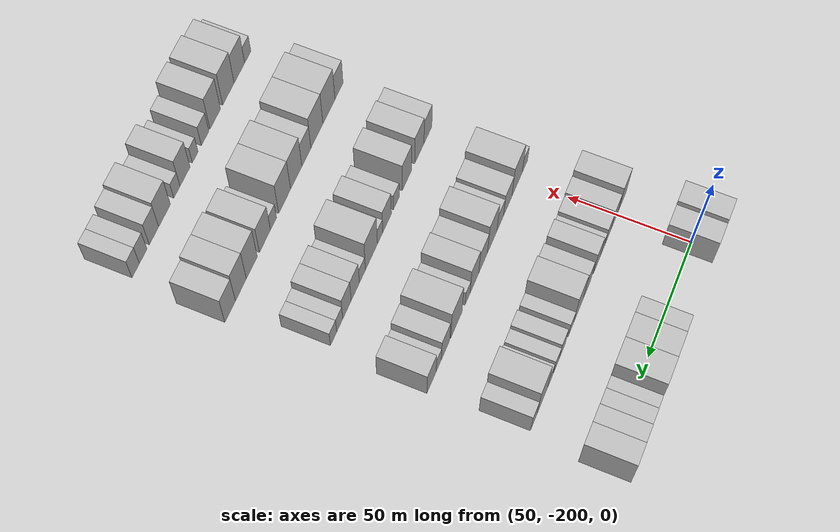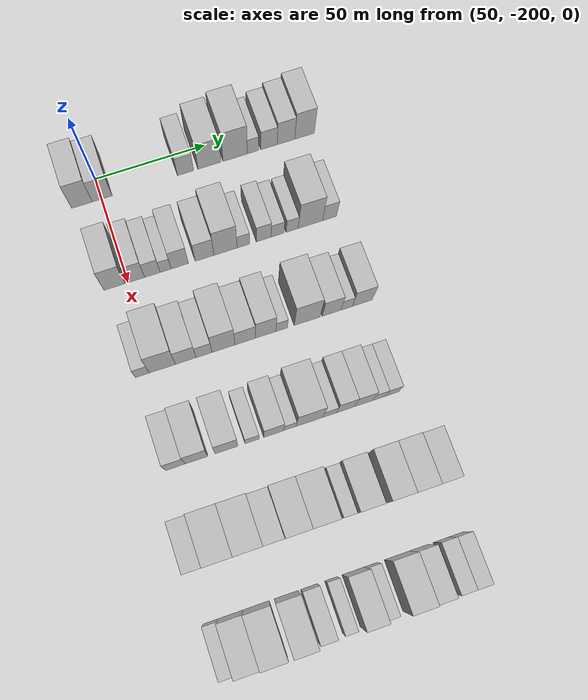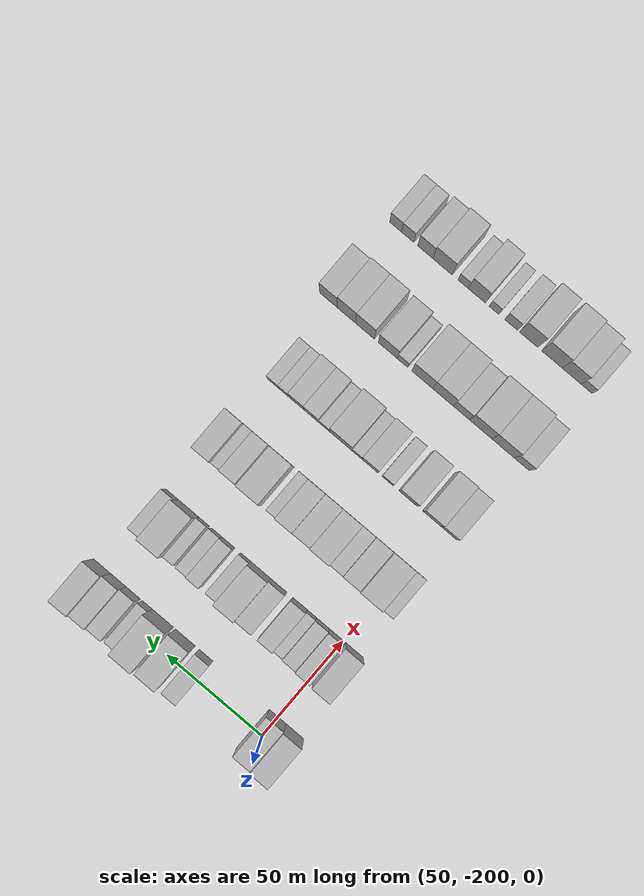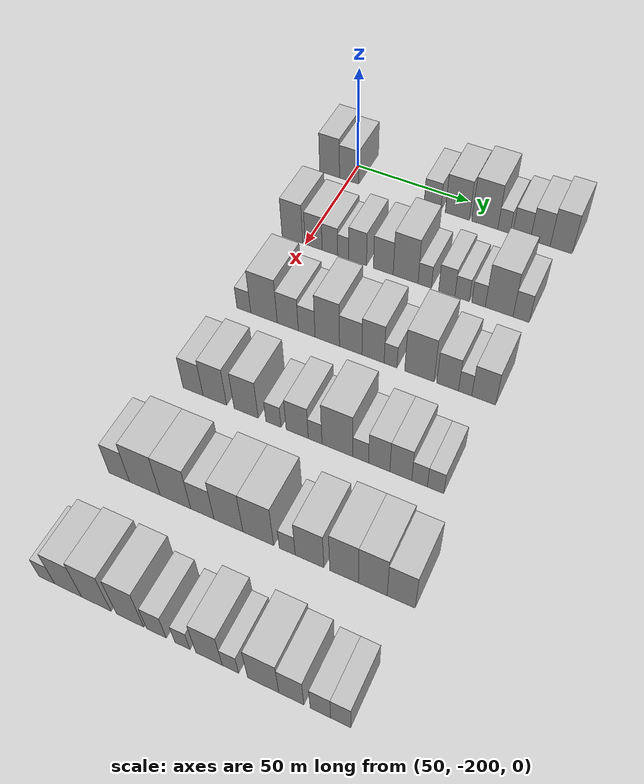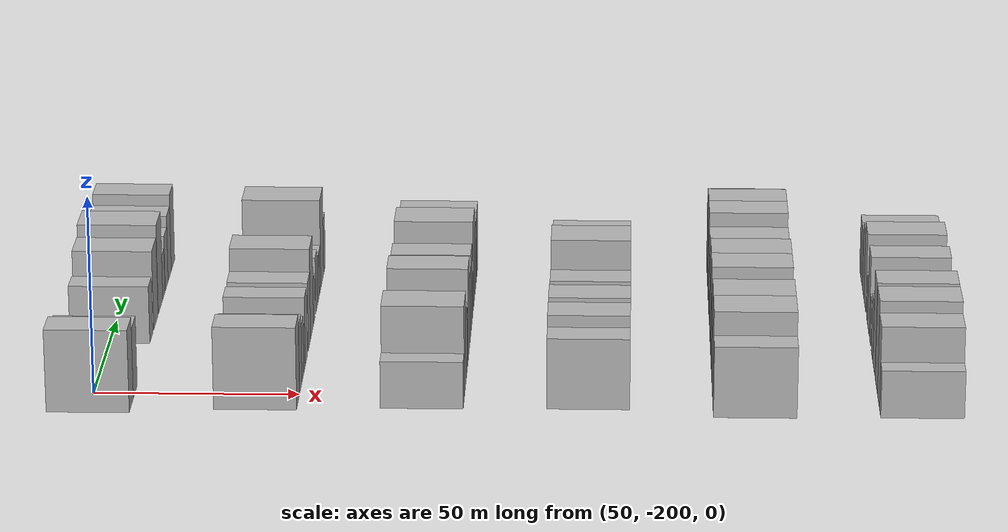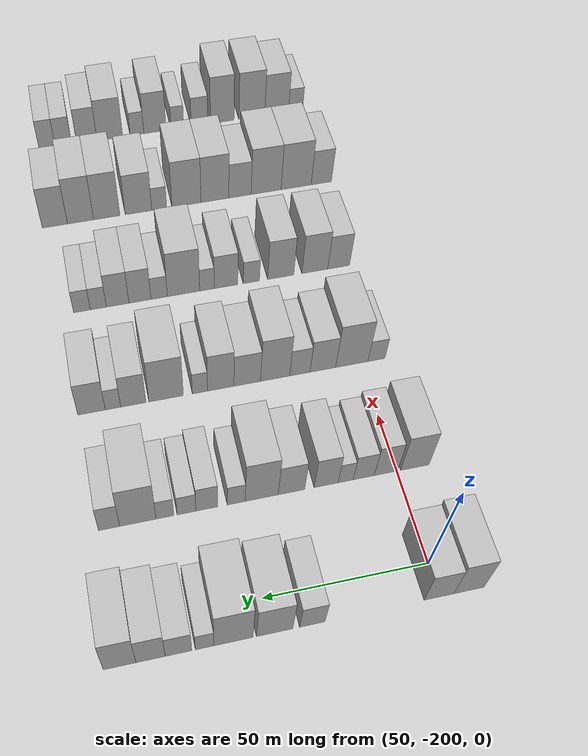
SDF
<sdf version="1.6">
 <world name="default">
  <model name="building_49">
   <static>1</static>
   <pose>50.0000 -208.6979 0 0.000000 0.000000 0.000000</pose>
   <link name="link">
    <pose>0 0 10.50 0 0 0</pose>
    <collision name="collision"><geometry><box><size>20.0000 9.2296 21.0000</size></box></geometry></collision>
    <visual name="visual">
     <cast_shadows>0</cast_shadows>
     <geometry><box><size>20.0000 9.2296 21.0000</size></box></geometry>
     <material>
      <script>
       <uri>model://HANNAS_wall/materials/scripts</uri>
       <uri>model://HANNAS_wall/materials/textures</uri>
       <name>vrc/HANNAS_wall</name>
      </script>
     </material>
    </visual>
   </link>
  </model>
  <model name="building_50">
   <static>1</static>
   <pose>50.0000 -199.6259 0 0.000000 0.000000 0.000000</pose>
   <link name="link">
    <pose>0 0 9.00 0 0 0</pose>
    <collision name="collision"><geometry><box><size>20.0000 8.9143 18.0000</size></box></geometry></collision>
    <visual name="visual">
     <cast_shadows>0</cast_shadows>
     <geometry><box><size>20.0000 8.9143 18.0000</size></box></geometry>
     <material>
      <script>
       <uri>model://HANNAS_wall/materials/scripts</uri>
       <uri>model://HANNAS_wall/materials/textures</uri>
       <name>vrc/HANNAS_wall</name>
      </script>
     </material>
    </visual>
   </link>
  </model>
  <model name="building_51">
   <static>1</static>
   <pose>50.0000 -162.0807 0 0.000000 0.000000 0.000000</pose>
   <link name="link">
    <pose>0 0 7.50 0 0 0</pose>
    <collision name="collision"><geometry><box><size>20.0000 7.3920 15.0000</size></box></geometry></collision>
    <visual name="visual">
     <cast_shadows>0</cast_shadows>
     <geometry><box><size>20.0000 7.3920 15.0000</size></box></geometry>
     <material>
      <script>
       <uri>model://HANNAS_wall/materials/scripts</uri>
       <uri>model://HANNAS_wall/materials/textures</uri>
       <name>vrc/HANNAS_wall</name>
      </script>
     </material>
    </visual>
   </link>
  </model>
  <model name="building_52">
   <static>1</static>
   <pose>50.0000 -151.1443 0 0.000000 0.000000 0.000000</pose>
   <link name="link">
    <pose>0 0 10.50 0 0 0</pose>
    <collision name="collision"><geometry><box><size>20.0000 10.4809 21.0000</size></box></geometry></collision>
    <visual name="visual">
     <cast_shadows>0</cast_shadows>
     <geometry><box><size>20.0000 10.4809 21.0000</size></box></geometry>
     <material>
      <script>
       <uri>model://HANNAS_wall/materials/scripts</uri>
       <uri>model://HANNAS_wall/materials/textures</uri>
       <name>vrc/HANNAS_wall</name>
      </script>
     </material>
    </visual>
   </link>
  </model>
  <model name="building_53">
   <static>1</static>
   <pose>50.0000 -139.3174 0 0.000000 0.000000 0.000000</pose>
   <link name="link">
    <pose>0 0 12.00 0 0 0</pose>
    <collision name="collision"><geometry><box><size>20.0000 11.1729 24.0000</size></box></geometry></collision>
    <visual name="visual">
     <cast_shadows>0</cast_shadows>
     <geometry><box><size>20.0000 11.1729 24.0000</size></box></geometry>
     <material>
      <script>
       <uri>model://HANNAS_wall/materials/scripts</uri>
       <uri>model://HANNAS_wall/materials/textures</uri>
       <name>vrc/HANNAS_wall</name>
      </script>
     </material>
    </visual>
   </link>
  </model>
  <model name="building_54">
   <static>1</static>
   <pose>50.0000 -131.1116 0 0.000000 0.000000 0.000000</pose>
   <link name="link">
    <pose>0 0 6.00 0 0 0</pose>
    <collision name="collision"><geometry><box><size>20.0000 5.2386 12.0000</size></box></geometry></collision>
    <visual name="visual">
     <cast_shadows>0</cast_shadows>
     <geometry><box><size>20.0000 5.2386 12.0000</size></box></geometry>
     <material>
      <script>
       <uri>model://HANNAS_wall/materials/scripts</uri>
       <uri>model://HANNAS_wall/materials/textures</uri>
       <name>vrc/HANNAS_wall</name>
      </script>
     </material>
    </visual>
   </link>
  </model>
  <model name="building_55">
   <static>1</static>
   <pose>50.0000 -123.7501 0 0.000000 0.000000 0.000000</pose>
   <link name="link">
    <pose>0 0 7.50 0 0 0</pose>
    <collision name="collision"><geometry><box><size>20.0000 7.4845 15.0000</size></box></geometry></collision>
    <visual name="visual">
     <cast_shadows>0</cast_shadows>
     <geometry><box><size>20.0000 7.4845 15.0000</size></box></geometry>
     <material>
      <script>
       <uri>model://HANNAS_wall/materials/scripts</uri>
       <uri>model://HANNAS_wall/materials/textures</uri>
       <name>vrc/HANNAS_wall</name>
      </script>
     </material>
    </visual>
   </link>
  </model>
  <model name="building_56">
   <static>1</static>
   <pose>50.0000 -115.9099 0 0.000000 0.000000 0.000000</pose>
   <link name="link">
    <pose>0 0 9.00 0 0 0</pose>
    <collision name="collision"><geometry><box><size>20.0000 8.1960 18.0000</size></box></geometry></collision>
    <visual name="visual">
     <cast_shadows>0</cast_shadows>
     <geometry><box><size>20.0000 8.1960 18.0000</size></box></geometry>
     <material>
      <script>
       <uri>model://HANNAS_wall/materials/scripts</uri>
       <uri>model://HANNAS_wall/materials/textures</uri>
       <name>vrc/HANNAS_wall</name>
      </script>
     </material>
    </visual>
   </link>
  </model>
  <model name="building_57">
   <static>1</static>
   <pose>50.0000 -107.2792 0 0.000000 0.000000 0.000000</pose>
   <link name="link">
    <pose>0 0 10.50 0 0 0</pose>
    <collision name="collision"><geometry><box><size>20.0000 9.0653 21.0000</size></box></geometry></collision>
    <visual name="visual">
     <cast_shadows>0</cast_shadows>
     <geometry><box><size>20.0000 9.0653 21.0000</size></box></geometry>
     <material>
      <script>
       <uri>model://HANNAS_wall/materials/scripts</uri>
       <uri>model://HANNAS_wall/materials/textures</uri>
       <name>vrc/HANNAS_wall</name>
      </script>
     </material>
    </visual>
   </link>
  </model>
  <model name="building_183">
   <static>1</static>
   <pose>90.0000 -205.7939 0 0.000000 0.000000 0.000000</pose>
   <link name="link">
    <pose>0 0 10.50 0 0 0</pose>
    <collision name="collision"><geometry><box><size>20.0000 9.2298 21.0000</size></box></geometry></collision>
    <visual name="visual">
     <cast_shadows>0</cast_shadows>
     <geometry><box><size>20.0000 9.2298 21.0000</size></box></geometry>
     <material>
      <script>
       <uri>model://HANNAS_wall/materials/scripts</uri>
       <uri>model://HANNAS_wall/materials/textures</uri>
       <name>vrc/HANNAS_wall</name>
      </script>
     </material>
    </visual>
   </link>
  </model>
  <model name="building_184">
   <static>1</static>
   <pose>90.0000 -196.3943 0 0.000000 0.000000 0.000000</pose>
   <link name="link">
    <pose>0 0 9.00 0 0 0</pose>
    <collision name="collision"><geometry><box><size>20.0000 7.5693 18.0000</size></box></geometry></collision>
    <visual name="visual">
     <cast_shadows>0</cast_shadows>
     <geometry><box><size>20.0000 7.5693 18.0000</size></box></geometry>
     <material>
      <script>
       <uri>model://HANNAS_wall/materials/scripts</uri>
       <uri>model://HANNAS_wall/materials/textures</uri>
       <name>vrc/HANNAS_wall</name>
      </script>
     </material>
    </visual>
   </link>
  </model>
  <model name="building_185">
   <static>1</static>
   <pose>90.0000 -189.2205 0 0.000000 0.000000 0.000000</pose>
   <link name="link">
    <pose>0 0 7.50 0 0 0</pose>
    <collision name="collision"><geometry><box><size>20.0000 6.7782 15.0000</size></box></geometry></collision>
    <visual name="visual">
     <cast_shadows>0</cast_shadows>
     <geometry><box><size>20.0000 6.7782 15.0000</size></box></geometry>
     <material>
      <script>
       <uri>model://HANNAS_wall/materials/scripts</uri>
       <uri>model://HANNAS_wall/materials/textures</uri>
       <name>vrc/HANNAS_wall</name>
      </script>
     </material>
    </visual>
   </link>
  </model>
  <model name="building_186">
   <static>1</static>
   <pose>90.0000 -183.4230 0 0.000000 0.000000 0.000000</pose>
   <link name="link">
    <pose>0 0 6.00 0 0 0</pose>
    <collision name="collision"><geometry><box><size>20.0000 4.8168 12.0000</size></box></geometry></collision>
    <visual name="visual">
     <cast_shadows>0</cast_shadows>
     <geometry><box><size>20.0000 4.8168 12.0000</size></box></geometry>
     <material>
      <script>
       <uri>model://HANNAS_wall/materials/scripts</uri>
       <uri>model://HANNAS_wall/materials/textures</uri>
       <name>vrc/HANNAS_wall</name>
      </script>
     </material>
    </visual>
   </link>
  </model>
  <model name="building_187">
   <static>1</static>
   <pose>90.0000 -177.2117 0 0.000000 0.000000 0.000000</pose>
   <link name="link">
    <pose>0 0 9.00 0 0 0</pose>
    <collision name="collision"><geometry><box><size>20.0000 7.6058 18.0000</size></box></geometry></collision>
    <visual name="visual">
     <cast_shadows>0</cast_shadows>
     <geometry><box><size>20.0000 7.6058 18.0000</size></box></geometry>
     <material>
      <script>
       <uri>model://HANNAS_wall/materials/scripts</uri>
       <uri>model://HANNAS_wall/materials/textures</uri>
       <name>vrc/HANNAS_wall</name>
      </script>
     </material>
    </visual>
   </link>
  </model>
  <model name="building_188">
   <static>1</static>
   <pose>90.0000 -166.2406 0 0.000000 0.000000 0.000000</pose>
   <link name="link">
    <pose>0 0 9.00 0 0 0</pose>
    <collision name="collision"><geometry><box><size>20.0000 8.3364 18.0000</size></box></geometry></collision>
    <visual name="visual">
     <cast_shadows>0</cast_shadows>
     <geometry><box><size>20.0000 8.3364 18.0000</size></box></geometry>
     <material>
      <script>
       <uri>model://HANNAS_wall/materials/scripts</uri>
       <uri>model://HANNAS_wall/materials/textures</uri>
       <name>vrc/HANNAS_wall</name>
      </script>
     </material>
    </visual>
   </link>
  </model>
  <model name="building_189">
   <static>1</static>
   <pose>90.0000 -156.8875 0 0.000000 0.000000 0.000000</pose>
   <link name="link">
    <pose>0 0 12.00 0 0 0</pose>
    <collision name="collision"><geometry><box><size>20.0000 10.3698 24.0000</size></box></geometry></collision>
    <visual name="visual">
     <cast_shadows>0</cast_shadows>
     <geometry><box><size>20.0000 10.3698 24.0000</size></box></geometry>
     <material>
      <script>
       <uri>model://HANNAS_wall/materials/scripts</uri>
       <uri>model://HANNAS_wall/materials/textures</uri>
       <name>vrc/HANNAS_wall</name>
      </script>
     </material>
    </visual>
   </link>
  </model>
  <model name="building_190">
   <static>1</static>
   <pose>90.0000 -148.9231 0 0.000000 0.000000 0.000000</pose>
   <link name="link">
    <pose>0 0 6.00 0 0 0</pose>
    <collision name="collision"><geometry><box><size>20.0000 5.5590 12.0000</size></box></geometry></collision>
    <visual name="visual">
     <cast_shadows>0</cast_shadows>
     <geometry><box><size>20.0000 5.5590 12.0000</size></box></geometry>
     <material>
      <script>
       <uri>model://HANNAS_wall/materials/scripts</uri>
       <uri>model://HANNAS_wall/materials/textures</uri>
       <name>vrc/HANNAS_wall</name>
      </script>
     </material>
    </visual>
   </link>
  </model>
  <model name="building_191">
   <static>1</static>
   <pose>90.0000 -139.8269 0 0.000000 0.000000 0.000000</pose>
   <link name="link">
    <pose>0 0 7.50 0 0 0</pose>
    <collision name="collision"><geometry><box><size>20.0000 6.6335 15.0000</size></box></geometry></collision>
    <visual name="visual">
     <cast_shadows>0</cast_shadows>
     <geometry><box><size>20.0000 6.6335 15.0000</size></box></geometry>
     <material>
      <script>
       <uri>model://HANNAS_wall/materials/scripts</uri>
       <uri>model://HANNAS_wall/materials/textures</uri>
       <name>vrc/HANNAS_wall</name>
      </script>
     </material>
    </visual>
   </link>
  </model>
  <model name="building_192">
   <static>1</static>
   <pose>90.0000 -133.6102 0 0.000000 0.000000 0.000000</pose>
   <link name="link">
    <pose>0 0 6.00 0 0 0</pose>
    <collision name="collision"><geometry><box><size>20.0000 5.7999 12.0000</size></box></geometry></collision>
    <visual name="visual">
     <cast_shadows>0</cast_shadows>
     <geometry><box><size>20.0000 5.7999 12.0000</size></box></geometry>
     <material>
      <script>
       <uri>model://HANNAS_wall/materials/scripts</uri>
       <uri>model://HANNAS_wall/materials/textures</uri>
       <name>vrc/HANNAS_wall</name>
      </script>
     </material>
    </visual>
   </link>
  </model>
  <model name="building_193">
   <static>1</static>
   <pose>90.0000 -127.0034 0 0.000000 0.000000 0.000000</pose>
   <link name="link">
    <pose>0 0 6.00 0 0 0</pose>
    <collision name="collision"><geometry><box><size>20.0000 5.4137 12.0000</size></box></geometry></collision>
    <visual name="visual">
     <cast_shadows>0</cast_shadows>
     <geometry><box><size>20.0000 5.4137 12.0000</size></box></geometry>
     <material>
      <script>
       <uri>model://HANNAS_wall/materials/scripts</uri>
       <uri>model://HANNAS_wall/materials/textures</uri>
       <name>vrc/HANNAS_wall</name>
      </script>
     </material>
    </visual>
   </link>
  </model>
  <model name="building_194">
   <static>1</static>
   <pose>90.0000 -118.7745 0 0.000000 0.000000 0.000000</pose>
   <link name="link">
    <pose>0 0 12.00 0 0 0</pose>
    <collision name="collision"><geometry><box><size>20.0000 11.0441 24.0000</size></box></geometry></collision>
    <visual name="visual">
     <cast_shadows>0</cast_shadows>
     <geometry><box><size>20.0000 11.0441 24.0000</size></box></geometry>
     <material>
      <script>
       <uri>model://HANNAS_wall/materials/scripts</uri>
       <uri>model://HANNAS_wall/materials/textures</uri>
       <name>vrc/HANNAS_wall</name>
      </script>
     </material>
    </visual>
   </link>
  </model>
  <model name="building_195">
   <static>1</static>
   <pose>90.0000 -110.0672 0 0.000000 0.000000 0.000000</pose>
   <link name="link">
    <pose>0 0 7.50 0 0 0</pose>
    <collision name="collision"><geometry><box><size>20.0000 6.3704 15.0000</size></box></geometry></collision>
    <visual name="visual">
     <cast_shadows>0</cast_shadows>
     <geometry><box><size>20.0000 6.3704 15.0000</size></box></geometry>
     <material>
      <script>
       <uri>model://HANNAS_wall/materials/scripts</uri>
       <uri>model://HANNAS_wall/materials/textures</uri>
       <name>vrc/HANNAS_wall</name>
      </script>
     </material>
    </visual>
   </link>
  </model>
  <model name="building_315">
   <static>1</static>
   <pose>130.0000 -205.7311 0 0.000000 0.000000 0.000000</pose>
   <link name="link">
    <pose>0 0 6.00 0 0 0</pose>
    <collision name="collision"><geometry><box><size>20.0000 5.9216 12.0000</size></box></geometry></collision>
    <visual name="visual">
     <cast_shadows>0</cast_shadows>
     <geometry><box><size>20.0000 5.9216 12.0000</size></box></geometry>
     <material>
      <script>
       <uri>model://HANNAS_wall/materials/scripts</uri>
       <uri>model://HANNAS_wall/materials/textures</uri>
       <name>vrc/HANNAS_wall</name>
      </script>
     </material>
    </visual>
   </link>
  </model>
  <model name="building_316">
   <static>1</static>
   <pose>130.0000 -197.1789 0 0.000000 0.000000 0.000000</pose>
   <link name="link">
    <pose>0 0 12.00 0 0 0</pose>
    <collision name="collision"><geometry><box><size>20.0000 11.1828 24.0000</size></box></geometry></collision>
    <visual name="visual">
     <cast_shadows>0</cast_shadows>
     <geometry><box><size>20.0000 11.1828 24.0000</size></box></geometry>
     <material>
      <script>
       <uri>model://HANNAS_wall/materials/scripts</uri>
       <uri>model://HANNAS_wall/materials/textures</uri>
       <name>vrc/HANNAS_wall</name>
      </script>
     </material>
    </visual>
   </link>
  </model>
  <model name="building_317">
   <static>1</static>
   <pose>130.0000 -187.1916 0 0.000000 0.000000 0.000000</pose>
   <link name="link">
    <pose>0 0 9.00 0 0 0</pose>
    <collision name="collision"><geometry><box><size>20.0000 8.7918 18.0000</size></box></geometry></collision>
    <visual name="visual">
     <cast_shadows>0</cast_shadows>
     <geometry><box><size>20.0000 8.7918 18.0000</size></box></geometry>
     <material>
      <script>
       <uri>model://HANNAS_wall/materials/scripts</uri>
       <uri>model://HANNAS_wall/materials/textures</uri>
       <name>vrc/HANNAS_wall</name>
      </script>
     </material>
    </visual>
   </link>
  </model>
  <model name="building_318">
   <static>1</static>
   <pose>130.0000 -179.3383 0 0.000000 0.000000 0.000000</pose>
   <link name="link">
    <pose>0 0 7.50 0 0 0</pose>
    <collision name="collision"><geometry><box><size>20.0000 6.9146 15.0000</size></box></geometry></collision>
    <visual name="visual">
     <cast_shadows>0</cast_shadows>
     <geometry><box><size>20.0000 6.9146 15.0000</size></box></geometry>
     <material>
      <script>
       <uri>model://HANNAS_wall/materials/scripts</uri>
       <uri>model://HANNAS_wall/materials/textures</uri>
       <name>vrc/HANNAS_wall</name>
      </script>
     </material>
    </visual>
   </link>
  </model>
  <model name="building_319">
   <static>1</static>
   <pose>130.0000 -170.9210 0 0.000000 0.000000 0.000000</pose>
   <link name="link">
    <pose>0 0 12.00 0 0 0</pose>
    <collision name="collision"><geometry><box><size>20.0000 9.9200 24.0000</size></box></geometry></collision>
    <visual name="visual">
     <cast_shadows>0</cast_shadows>
     <geometry><box><size>20.0000 9.9200 24.0000</size></box></geometry>
     <material>
      <script>
       <uri>model://HANNAS_wall/materials/scripts</uri>
       <uri>model://HANNAS_wall/materials/textures</uri>
       <name>vrc/HANNAS_wall</name>
      </script>
     </material>
    </visual>
   </link>
  </model>
  <model name="building_320">
   <static>1</static>
   <pose>130.0000 -161.4629 0 0.000000 0.000000 0.000000</pose>
   <link name="link">
    <pose>0 0 9.00 0 0 0</pose>
    <collision name="collision"><geometry><box><size>20.0000 8.9964 18.0000</size></box></geometry></collision>
    <visual name="visual">
     <cast_shadows>0</cast_shadows>
     <geometry><box><size>20.0000 8.9964 18.0000</size></box></geometry>
     <material>
      <script>
       <uri>model://HANNAS_wall/materials/scripts</uri>
       <uri>model://HANNAS_wall/materials/textures</uri>
       <name>vrc/HANNAS_wall</name>
      </script>
     </material>
    </visual>
   </link>
  </model>
  <model name="building_321">
   <static>1</static>
   <pose>130.0000 -152.5622 0 0.000000 0.000000 0.000000</pose>
   <link name="link">
    <pose>0 0 10.50 0 0 0</pose>
    <collision name="collision"><geometry><box><size>20.0000 8.8049 21.0000</size></box></geometry></collision>
    <visual name="visual">
     <cast_shadows>0</cast_shadows>
     <geometry><box><size>20.0000 8.8049 21.0000</size></box></geometry>
     <material>
      <script>
       <uri>model://HANNAS_wall/materials/scripts</uri>
       <uri>model://HANNAS_wall/materials/textures</uri>
       <name>vrc/HANNAS_wall</name>
      </script>
     </material>
    </visual>
   </link>
  </model>
  <model name="building_322">
   <static>1</static>
   <pose>130.0000 -145.6412 0 0.000000 0.000000 0.000000</pose>
   <link name="link">
    <pose>0 0 6.00 0 0 0</pose>
    <collision name="collision"><geometry><box><size>20.0000 5.0371 12.0000</size></box></geometry></collision>
    <visual name="visual">
     <cast_shadows>0</cast_shadows>
     <geometry><box><size>20.0000 5.0371 12.0000</size></box></geometry>
     <material>
      <script>
       <uri>model://HANNAS_wall/materials/scripts</uri>
       <uri>model://HANNAS_wall/materials/textures</uri>
       <name>vrc/HANNAS_wall</name>
      </script>
     </material>
    </visual>
   </link>
  </model>
  <model name="building_323">
   <static>1</static>
   <pose>130.0000 -134.4488 0 0.000000 0.000000 0.000000</pose>
   <link name="link">
    <pose>0 0 12.00 0 0 0</pose>
    <collision name="collision"><geometry><box><size>20.0000 11.3478 24.0000</size></box></geometry></collision>
    <visual name="visual">
     <cast_shadows>0</cast_shadows>
     <geometry><box><size>20.0000 11.3478 24.0000</size></box></geometry>
     <material>
      <script>
       <uri>model://HANNAS_wall/materials/scripts</uri>
       <uri>model://HANNAS_wall/materials/textures</uri>
       <name>vrc/HANNAS_wall</name>
      </script>
     </material>
    </visual>
   </link>
  </model>
  <model name="building_324">
   <static>1</static>
   <pose>130.0000 -123.6545 0 0.000000 0.000000 0.000000</pose>
   <link name="link">
    <pose>0 0 9.00 0 0 0</pose>
    <collision name="collision"><geometry><box><size>20.0000 8.2407 18.0000</size></box></geometry></collision>
    <visual name="visual">
     <cast_shadows>0</cast_shadows>
     <geometry><box><size>20.0000 8.2407 18.0000</size></box></geometry>
     <material>
      <script>
       <uri>model://HANNAS_wall/materials/scripts</uri>
       <uri>model://HANNAS_wall/materials/textures</uri>
       <name>vrc/HANNAS_wall</name>
      </script>
     </material>
    </visual>
   </link>
  </model>
  <model name="building_325">
   <static>1</static>
   <pose>130.0000 -117.0283 0 0.000000 0.000000 0.000000</pose>
   <link name="link">
    <pose>0 0 6.00 0 0 0</pose>
    <collision name="collision"><geometry><box><size>20.0000 5.0117 12.0000</size></box></geometry></collision>
    <visual name="visual">
     <cast_shadows>0</cast_shadows>
     <geometry><box><size>20.0000 5.0117 12.0000</size></box></geometry>
     <material>
      <script>
       <uri>model://HANNAS_wall/materials/scripts</uri>
       <uri>model://HANNAS_wall/materials/textures</uri>
       <name>vrc/HANNAS_wall</name>
      </script>
     </material>
    </visual>
   </link>
  </model>
  <model name="building_326">
   <static>1</static>
   <pose>130.0000 -110.0682 0 0.000000 0.000000 0.000000</pose>
   <link name="link">
    <pose>0 0 9.00 0 0 0</pose>
    <collision name="collision"><geometry><box><size>20.0000 8.9087 18.0000</size></box></geometry></collision>
    <visual name="visual">
     <cast_shadows>0</cast_shadows>
     <geometry><box><size>20.0000 8.9087 18.0000</size></box></geometry>
     <material>
      <script>
       <uri>model://HANNAS_wall/materials/scripts</uri>
       <uri>model://HANNAS_wall/materials/textures</uri>
       <name>vrc/HANNAS_wall</name>
      </script>
     </material>
    </visual>
   </link>
  </model>
  <model name="building_460">
   <static>1</static>
   <pose>170.0000 -204.0578 0 0.000000 0.000000 0.000000</pose>
   <link name="link">
    <pose>0 0 9.00 0 0 0</pose>
    <collision name="collision"><geometry><box><size>20.0000 8.0960 18.0000</size></box></geometry></collision>
    <visual name="visual">
     <cast_shadows>0</cast_shadows>
     <geometry><box><size>20.0000 8.0960 18.0000</size></box></geometry>
     <material>
      <script>
       <uri>model://HANNAS_wall/materials/scripts</uri>
       <uri>model://HANNAS_wall/materials/textures</uri>
       <name>vrc/HANNAS_wall</name>
      </script>
     </material>
    </visual>
   </link>
  </model>
  <model name="building_461">
   <static>1</static>
   <pose>170.0000 -195.2673 0 0.000000 0.000000 0.000000</pose>
   <link name="link">
    <pose>0 0 10.50 0 0 0</pose>
    <collision name="collision"><geometry><box><size>20.0000 9.4850 21.0000</size></box></geometry></collision>
    <visual name="visual">
     <cast_shadows>0</cast_shadows>
     <geometry><box><size>20.0000 9.4850 21.0000</size></box></geometry>
     <material>
      <script>
       <uri>model://HANNAS_wall/materials/scripts</uri>
       <uri>model://HANNAS_wall/materials/textures</uri>
       <name>vrc/HANNAS_wall</name>
      </script>
     </material>
    </visual>
   </link>
  </model>
  <model name="building_462">
   <static>1</static>
   <pose>170.0000 -182.7628 0 0.000000 0.000000 0.000000</pose>
   <link name="link">
    <pose>0 0 10.50 0 0 0</pose>
    <collision name="collision"><geometry><box><size>20.0000 9.5242 21.0000</size></box></geometry></collision>
    <visual name="visual">
     <cast_shadows>0</cast_shadows>
     <geometry><box><size>20.0000 9.5242 21.0000</size></box></geometry>
     <material>
      <script>
       <uri>model://HANNAS_wall/materials/scripts</uri>
       <uri>model://HANNAS_wall/materials/textures</uri>
       <name>vrc/HANNAS_wall</name>
      </script>
     </material>
    </visual>
   </link>
  </model>
  <model name="building_463">
   <static>1</static>
   <pose>170.0000 -172.0584 0 0.000000 0.000000 0.000000</pose>
   <link name="link">
    <pose>0 0 6.00 0 0 0</pose>
    <collision name="collision"><geometry><box><size>20.0000 5.8846 12.0000</size></box></geometry></collision>
    <visual name="visual">
     <cast_shadows>0</cast_shadows>
     <geometry><box><size>20.0000 5.8846 12.0000</size></box></geometry>
     <material>
      <script>
       <uri>model://HANNAS_wall/materials/scripts</uri>
       <uri>model://HANNAS_wall/materials/textures</uri>
       <name>vrc/HANNAS_wall</name>
      </script>
     </material>
    </visual>
   </link>
  </model>
  <model name="building_464">
   <static>1</static>
   <pose>170.0000 -162.8904 0 0.000000 0.000000 0.000000</pose>
   <link name="link">
    <pose>0 0 9.00 0 0 0</pose>
    <collision name="collision"><geometry><box><size>20.0000 8.4513 18.0000</size></box></geometry></collision>
    <visual name="visual">
     <cast_shadows>0</cast_shadows>
     <geometry><box><size>20.0000 8.4513 18.0000</size></box></geometry>
     <material>
      <script>
       <uri>model://HANNAS_wall/materials/scripts</uri>
       <uri>model://HANNAS_wall/materials/textures</uri>
       <name>vrc/HANNAS_wall</name>
      </script>
     </material>
    </visual>
   </link>
  </model>
  <model name="building_465">
   <static>1</static>
   <pose>170.0000 -156.0649 0 0.000000 0.000000 0.000000</pose>
   <link name="link">
    <pose>0 0 6.00 0 0 0</pose>
    <collision name="collision"><geometry><box><size>20.0000 5.1997 12.0000</size></box></geometry></collision>
    <visual name="visual">
     <cast_shadows>0</cast_shadows>
     <geometry><box><size>20.0000 5.1997 12.0000</size></box></geometry>
     <material>
      <script>
       <uri>model://HANNAS_wall/materials/scripts</uri>
       <uri>model://HANNAS_wall/materials/textures</uri>
       <name>vrc/HANNAS_wall</name>
      </script>
     </material>
    </visual>
   </link>
  </model>
  <model name="building_466">
   <static>1</static>
   <pose>170.0000 -147.7072 0 0.000000 0.000000 0.000000</pose>
   <link name="link">
    <pose>0 0 12.00 0 0 0</pose>
    <collision name="collision"><geometry><box><size>20.0000 11.5158 24.0000</size></box></geometry></collision>
    <visual name="visual">
     <cast_shadows>0</cast_shadows>
     <geometry><box><size>20.0000 11.5158 24.0000</size></box></geometry>
     <material>
      <script>
       <uri>model://HANNAS_wall/materials/scripts</uri>
       <uri>model://HANNAS_wall/materials/textures</uri>
       <name>vrc/HANNAS_wall</name>
      </script>
     </material>
    </visual>
   </link>
  </model>
  <model name="building_467">
   <static>1</static>
   <pose>170.0000 -139.0507 0 0.000000 0.000000 0.000000</pose>
   <link name="link">
    <pose>0 0 6.00 0 0 0</pose>
    <collision name="collision"><geometry><box><size>20.0000 5.7973 12.0000</size></box></geometry></collision>
    <visual name="visual">
     <cast_shadows>0</cast_shadows>
     <geometry><box><size>20.0000 5.7973 12.0000</size></box></geometry>
     <material>
      <script>
       <uri>model://HANNAS_wall/materials/scripts</uri>
       <uri>model://HANNAS_wall/materials/textures</uri>
       <name>vrc/HANNAS_wall</name>
      </script>
     </material>
    </visual>
   </link>
  </model>
  <model name="building_468">
   <static>1</static>
   <pose>170.0000 -132.2656 0 0.000000 0.000000 0.000000</pose>
   <link name="link">
    <pose>0 0 9.00 0 0 0</pose>
    <collision name="collision"><geometry><box><size>20.0000 7.7729 18.0000</size></box></geometry></collision>
    <visual name="visual">
     <cast_shadows>0</cast_shadows>
     <geometry><box><size>20.0000 7.7729 18.0000</size></box></geometry>
     <material>
      <script>
       <uri>model://HANNAS_wall/materials/scripts</uri>
       <uri>model://HANNAS_wall/materials/textures</uri>
       <name>vrc/HANNAS_wall</name>
      </script>
     </material>
    </visual>
   </link>
  </model>
  <model name="building_469">
   <static>1</static>
   <pose>170.0000 -124.4283 0 0.000000 0.000000 0.000000</pose>
   <link name="link">
    <pose>0 0 9.00 0 0 0</pose>
    <collision name="collision"><geometry><box><size>20.0000 7.9017 18.0000</size></box></geometry></collision>
    <visual name="visual">
     <cast_shadows>0</cast_shadows>
     <geometry><box><size>20.0000 7.9017 18.0000</size></box></geometry>
     <material>
      <script>
       <uri>model://HANNAS_wall/materials/scripts</uri>
       <uri>model://HANNAS_wall/materials/textures</uri>
       <name>vrc/HANNAS_wall</name>
      </script>
     </material>
    </visual>
   </link>
  </model>
  <model name="building_470">
   <static>1</static>
   <pose>170.0000 -117.6823 0 0.000000 0.000000 0.000000</pose>
   <link name="link">
    <pose>0 0 6.00 0 0 0</pose>
    <collision name="collision"><geometry><box><size>20.0000 5.5903 12.0000</size></box></geometry></collision>
    <visual name="visual">
     <cast_shadows>0</cast_shadows>
     <geometry><box><size>20.0000 5.5903 12.0000</size></box></geometry>
     <material>
      <script>
       <uri>model://HANNAS_wall/materials/scripts</uri>
       <uri>model://HANNAS_wall/materials/textures</uri>
       <name>vrc/HANNAS_wall</name>
      </script>
     </material>
    </visual>
   </link>
  </model>
  <model name="building_471">
   <static>1</static>
   <pose>170.0000 -111.9905 0 0.000000 0.000000 0.000000</pose>
   <link name="link">
    <pose>0 0 6.00 0 0 0</pose>
    <collision name="collision"><geometry><box><size>20.0000 5.7933 12.0000</size></box></geometry></collision>
    <visual name="visual">
     <cast_shadows>0</cast_shadows>
     <geometry><box><size>20.0000 5.7933 12.0000</size></box></geometry>
     <material>
      <script>
       <uri>model://HANNAS_wall/materials/scripts</uri>
       <uri>model://HANNAS_wall/materials/textures</uri>
       <name>vrc/HANNAS_wall</name>
      </script>
     </material>
    </visual>
   </link>
  </model>
  <model name="building_595">
   <static>1</static>
   <pose>210.0000 -208.6365 0 0.000000 0.000000 0.000000</pose>
   <link name="link">
    <pose>0 0 9.00 0 0 0</pose>
    <collision name="collision"><geometry><box><size>20.0000 7.9935 18.0000</size></box></geometry></collision>
    <visual name="visual">
     <cast_shadows>0</cast_shadows>
     <geometry><box><size>20.0000 7.9935 18.0000</size></box></geometry>
     <material>
      <script>
       <uri>model://HANNAS_wall/materials/scripts</uri>
       <uri>model://HANNAS_wall/materials/textures</uri>
       <name>vrc/HANNAS_wall</name>
      </script>
     </material>
    </visual>
   </link>
  </model>
  <model name="building_596">
   <static>1</static>
   <pose>210.0000 -198.7271 0 0.000000 0.000000 0.000000</pose>
   <link name="link">
    <pose>0 0 12.00 0 0 0</pose>
    <collision name="collision"><geometry><box><size>20.0000 11.8254 24.0000</size></box></geometry></collision>
    <visual name="visual">
     <cast_shadows>0</cast_shadows>
     <geometry><box><size>20.0000 11.8254 24.0000</size></box></geometry>
     <material>
      <script>
       <uri>model://HANNAS_wall/materials/scripts</uri>
       <uri>model://HANNAS_wall/materials/textures</uri>
       <name>vrc/HANNAS_wall</name>
      </script>
     </material>
    </visual>
   </link>
  </model>
  <model name="building_597">
   <static>1</static>
   <pose>210.0000 -187.0000 0 0.000000 0.000000 0.000000</pose>
   <link name="link">
    <pose>0 0 12.00 0 0 0</pose>
    <collision name="collision"><geometry><box><size>20.0000 11.6288 24.0000</size></box></geometry></collision>
    <visual name="visual">
     <cast_shadows>0</cast_shadows>
     <geometry><box><size>20.0000 11.6288 24.0000</size></box></geometry>
     <material>
      <script>
       <uri>model://HANNAS_wall/materials/scripts</uri>
       <uri>model://HANNAS_wall/materials/textures</uri>
       <name>vrc/HANNAS_wall</name>
      </script>
     </material>
    </visual>
   </link>
  </model>
  <model name="building_598">
   <static>1</static>
   <pose>210.0000 -176.8788 0 0.000000 0.000000 0.000000</pose>
   <link name="link">
    <pose>0 0 9.00 0 0 0</pose>
    <collision name="collision"><geometry><box><size>20.0000 8.6135 18.0000</size></box></geometry></collision>
    <visual name="visual">
     <cast_shadows>0</cast_shadows>
     <geometry><box><size>20.0000 8.6135 18.0000</size></box></geometry>
     <material>
      <script>
       <uri>model://HANNAS_wall/materials/scripts</uri>
       <uri>model://HANNAS_wall/materials/textures</uri>
       <name>vrc/HANNAS_wall</name>
      </script>
     </material>
    </visual>
   </link>
  </model>
  <model name="building_599">
   <static>1</static>
   <pose>210.0000 -167.2377 0 0.000000 0.000000 0.000000</pose>
   <link name="link">
    <pose>0 0 12.00 0 0 0</pose>
    <collision name="collision"><geometry><box><size>20.0000 10.6687 24.0000</size></box></geometry></collision>
    <visual name="visual">
     <cast_shadows>0</cast_shadows>
     <geometry><box><size>20.0000 10.6687 24.0000</size></box></geometry>
     <material>
      <script>
       <uri>model://HANNAS_wall/materials/scripts</uri>
       <uri>model://HANNAS_wall/materials/textures</uri>
       <name>vrc/HANNAS_wall</name>
      </script>
     </material>
    </visual>
   </link>
  </model>
  <model name="building_600">
   <static>1</static>
   <pose>210.0000 -156.3661 0 0.000000 0.000000 0.000000</pose>
   <link name="link">
    <pose>0 0 12.00 0 0 0</pose>
    <collision name="collision"><geometry><box><size>20.0000 11.0745 24.0000</size></box></geometry></collision>
    <visual name="visual">
     <cast_shadows>0</cast_shadows>
     <geometry><box><size>20.0000 11.0745 24.0000</size></box></geometry>
     <material>
      <script>
       <uri>model://HANNAS_wall/materials/scripts</uri>
       <uri>model://HANNAS_wall/materials/textures</uri>
       <name>vrc/HANNAS_wall</name>
      </script>
     </material>
    </visual>
   </link>
  </model>
  <model name="building_601">
   <static>1</static>
   <pose>210.0000 -146.0127 0 0.000000 0.000000 0.000000</pose>
   <link name="link">
    <pose>0 0 6.00 0 0 0</pose>
    <collision name="collision"><geometry><box><size>20.0000 5.6321 12.0000</size></box></geometry></collision>
    <visual name="visual">
     <cast_shadows>0</cast_shadows>
     <geometry><box><size>20.0000 5.6321 12.0000</size></box></geometry>
     <material>
      <script>
       <uri>model://HANNAS_wall/materials/scripts</uri>
       <uri>model://HANNAS_wall/materials/textures</uri>
       <name>vrc/HANNAS_wall</name>
      </script>
     </material>
    </visual>
   </link>
  </model>
  <model name="building_602">
   <static>1</static>
   <pose>210.0000 -138.1942 0 0.000000 0.000000 0.000000</pose>
   <link name="link">
    <pose>0 0 10.50 0 0 0</pose>
    <collision name="collision"><geometry><box><size>20.0000 10.0049 21.0000</size></box></geometry></collision>
    <visual name="visual">
     <cast_shadows>0</cast_shadows>
     <geometry><box><size>20.0000 10.0049 21.0000</size></box></geometry>
     <material>
      <script>
       <uri>model://HANNAS_wall/materials/scripts</uri>
       <uri>model://HANNAS_wall/materials/textures</uri>
       <name>vrc/HANNAS_wall</name>
      </script>
     </material>
    </visual>
   </link>
  </model>
  <model name="building_603">
   <static>1</static>
   <pose>210.0000 -126.2860 0 0.000000 0.000000 0.000000</pose>
   <link name="link">
    <pose>0 0 12.00 0 0 0</pose>
    <collision name="collision"><geometry><box><size>20.0000 9.8116 24.0000</size></box></geometry></collision>
    <visual name="visual">
     <cast_shadows>0</cast_shadows>
     <geometry><box><size>20.0000 9.8116 24.0000</size></box></geometry>
     <material>
      <script>
       <uri>model://HANNAS_wall/materials/scripts</uri>
       <uri>model://HANNAS_wall/materials/textures</uri>
       <name>vrc/HANNAS_wall</name>
      </script>
     </material>
    </visual>
   </link>
  </model>
  <model name="building_604">
   <static>1</static>
   <pose>210.0000 -116.5355 0 0.000000 0.000000 0.000000</pose>
   <link name="link">
    <pose>0 0 12.00 0 0 0</pose>
    <collision name="collision"><geometry><box><size>20.0000 9.6893 24.0000</size></box></geometry></collision>
    <visual name="visual">
     <cast_shadows>0</cast_shadows>
     <geometry><box><size>20.0000 9.6893 24.0000</size></box></geometry>
     <material>
      <script>
       <uri>model://HANNAS_wall/materials/scripts</uri>
       <uri>model://HANNAS_wall/materials/textures</uri>
       <name>vrc/HANNAS_wall</name>
      </script>
     </material>
    </visual>
   </link>
  </model>
  <model name="building_605">
   <static>1</static>
   <pose>210.0000 -107.0369 0 0.000000 0.000000 0.000000</pose>
   <link name="link">
    <pose>0 0 10.50 0 0 0</pose>
    <collision name="collision"><geometry><box><size>20.0000 9.3080 21.0000</size></box></geometry></collision>
    <visual name="visual">
     <cast_shadows>0</cast_shadows>
     <geometry><box><size>20.0000 9.3080 21.0000</size></box></geometry>
     <material>
      <script>
       <uri>model://HANNAS_wall/materials/scripts</uri>
       <uri>model://HANNAS_wall/materials/textures</uri>
       <name>vrc/HANNAS_wall</name>
      </script>
     </material>
    </visual>
   </link>
  </model>
  <model name="building_731">
   <static>1</static>
   <pose>250.0000 -208.8565 0 0.000000 0.000000 0.000000</pose>
   <link name="link">
    <pose>0 0 6.00 0 0 0</pose>
    <collision name="collision"><geometry><box><size>20.0000 5.8803 12.0000</size></box></geometry></collision>
    <visual name="visual">
     <cast_shadows>0</cast_shadows>
     <geometry><box><size>20.0000 5.8803 12.0000</size></box></geometry>
     <material>
      <script>
       <uri>model://HANNAS_wall/materials/scripts</uri>
       <uri>model://HANNAS_wall/materials/textures</uri>
       <name>vrc/HANNAS_wall</name>
      </script>
     </material>
    </visual>
   </link>
  </model>
  <model name="building_732">
   <static>1</static>
   <pose>250.0000 -200.9578 0 0.000000 0.000000 0.000000</pose>
   <link name="link">
    <pose>0 0 10.50 0 0 0</pose>
    <collision name="collision"><geometry><box><size>20.0000 9.9170 21.0000</size></box></geometry></collision>
    <visual name="visual">
     <cast_shadows>0</cast_shadows>
     <geometry><box><size>20.0000 9.9170 21.0000</size></box></geometry>
     <material>
      <script>
       <uri>model://HANNAS_wall/materials/scripts</uri>
       <uri>model://HANNAS_wall/materials/textures</uri>
       <name>vrc/HANNAS_wall</name>
      </script>
     </material>
    </visual>
   </link>
  </model>
  <model name="building_733">
   <static>1</static>
   <pose>250.0000 -190.6660 0 0.000000 0.000000 0.000000</pose>
   <link name="link">
    <pose>0 0 12.00 0 0 0</pose>
    <collision name="collision"><geometry><box><size>20.0000 10.6666 24.0000</size></box></geometry></collision>
    <visual name="visual">
     <cast_shadows>0</cast_shadows>
     <geometry><box><size>20.0000 10.6666 24.0000</size></box></geometry>
     <material>
      <script>
       <uri>model://HANNAS_wall/materials/scripts</uri>
       <uri>model://HANNAS_wall/materials/textures</uri>
       <name>vrc/HANNAS_wall</name>
      </script>
     </material>
    </visual>
   </link>
  </model>
  <model name="building_734">
   <static>1</static>
   <pose>250.0000 -178.4978 0 0.000000 0.000000 0.000000</pose>
   <link name="link">
    <pose>0 0 12.00 0 0 0</pose>
    <collision name="collision"><geometry><box><size>20.0000 9.6699 24.0000</size></box></geometry></collision>
    <visual name="visual">
     <cast_shadows>0</cast_shadows>
     <geometry><box><size>20.0000 9.6699 24.0000</size></box></geometry>
     <material>
      <script>
       <uri>model://HANNAS_wall/materials/scripts</uri>
       <uri>model://HANNAS_wall/materials/textures</uri>
       <name>vrc/HANNAS_wall</name>
      </script>
     </material>
    </visual>
   </link>
  </model>
  <model name="building_735">
   <static>1</static>
   <pose>250.0000 -169.2462 0 0.000000 0.000000 0.000000</pose>
   <link name="link">
    <pose>0 0 7.50 0 0 0</pose>
    <collision name="collision"><geometry><box><size>20.0000 6.8333 15.0000</size></box></geometry></collision>
    <visual name="visual">
     <cast_shadows>0</cast_shadows>
     <geometry><box><size>20.0000 6.8333 15.0000</size></box></geometry>
     <material>
      <script>
       <uri>model://HANNAS_wall/materials/scripts</uri>
       <uri>model://HANNAS_wall/materials/textures</uri>
       <name>vrc/HANNAS_wall</name>
      </script>
     </material>
    </visual>
   </link>
  </model>
  <model name="building_736">
   <static>1</static>
   <pose>250.0000 -160.2461 0 0.000000 0.000000 0.000000</pose>
   <link name="link">
    <pose>0 0 6.00 0 0 0</pose>
    <collision name="collision"><geometry><box><size>20.0000 5.1669 12.0000</size></box></geometry></collision>
    <visual name="visual">
     <cast_shadows>0</cast_shadows>
     <geometry><box><size>20.0000 5.1669 12.0000</size></box></geometry>
     <material>
      <script>
       <uri>model://HANNAS_wall/materials/scripts</uri>
       <uri>model://HANNAS_wall/materials/textures</uri>
       <name>vrc/HANNAS_wall</name>
      </script>
     </material>
    </visual>
   </link>
  </model>
  <model name="building_737">
   <static>1</static>
   <pose>250.0000 -151.1786 0 0.000000 0.000000 0.000000</pose>
   <link name="link">
    <pose>0 0 10.50 0 0 0</pose>
    <collision name="collision"><geometry><box><size>20.0000 8.9682 21.0000</size></box></geometry></collision>
    <visual name="visual">
     <cast_shadows>0</cast_shadows>
     <geometry><box><size>20.0000 8.9682 21.0000</size></box></geometry>
     <material>
      <script>
       <uri>model://HANNAS_wall/materials/scripts</uri>
       <uri>model://HANNAS_wall/materials/textures</uri>
       <name>vrc/HANNAS_wall</name>
      </script>
     </material>
    </visual>
   </link>
  </model>
  <model name="building_738">
   <static>1</static>
   <pose>250.0000 -143.9680 0 0.000000 0.000000 0.000000</pose>
   <link name="link">
    <pose>0 0 6.00 0 0 0</pose>
    <collision name="collision"><geometry><box><size>20.0000 5.4529 12.0000</size></box></geometry></collision>
    <visual name="visual">
     <cast_shadows>0</cast_shadows>
     <geometry><box><size>20.0000 5.4529 12.0000</size></box></geometry>
     <material>
      <script>
       <uri>model://HANNAS_wall/materials/scripts</uri>
       <uri>model://HANNAS_wall/materials/textures</uri>
       <name>vrc/HANNAS_wall</name>
      </script>
     </material>
    </visual>
   </link>
  </model>
  <model name="building_739">
   <static>1</static>
   <pose>250.0000 -133.1372 0 0.000000 0.000000 0.000000</pose>
   <link name="link">
    <pose>0 0 10.50 0 0 0</pose>
    <collision name="collision"><geometry><box><size>20.0000 10.2086 21.0000</size></box></geometry></collision>
    <visual name="visual">
     <cast_shadows>0</cast_shadows>
     <geometry><box><size>20.0000 10.2086 21.0000</size></box></geometry>
     <material>
      <script>
       <uri>model://HANNAS_wall/materials/scripts</uri>
       <uri>model://HANNAS_wall/materials/textures</uri>
       <name>vrc/HANNAS_wall</name>
      </script>
     </material>
    </visual>
   </link>
  </model>
  <model name="building_740">
   <static>1</static>
   <pose>250.0000 -124.0096 0 0.000000 0.000000 0.000000</pose>
   <link name="link">
    <pose>0 0 9.00 0 0 0</pose>
    <collision name="collision"><geometry><box><size>20.0000 8.0465 18.0000</size></box></geometry></collision>
    <visual name="visual">
     <cast_shadows>0</cast_shadows>
     <geometry><box><size>20.0000 8.0465 18.0000</size></box></geometry>
     <material>
      <script>
       <uri>model://HANNAS_wall/materials/scripts</uri>
       <uri>model://HANNAS_wall/materials/textures</uri>
       <name>vrc/HANNAS_wall</name>
      </script>
     </material>
    </visual>
   </link>
  </model>
  <model name="building_741">
   <static>1</static>
   <pose>250.0000 -114.7577 0 0.000000 0.000000 0.000000</pose>
   <link name="link">
    <pose>0 0 7.50 0 0 0</pose>
    <collision name="collision"><geometry><box><size>20.0000 6.4573 15.0000</size></box></geometry></collision>
    <visual name="visual">
     <cast_shadows>0</cast_shadows>
     <geometry><box><size>20.0000 6.4573 15.0000</size></box></geometry>
     <material>
      <script>
       <uri>model://HANNAS_wall/materials/scripts</uri>
       <uri>model://HANNAS_wall/materials/textures</uri>
       <name>vrc/HANNAS_wall</name>
      </script>
     </material>
    </visual>
   </link>
  </model>
  <model name="building_742">
   <static>1</static>
   <pose>250.0000 -108.3837 0 0.000000 0.000000 0.000000</pose>
   <link name="link">
    <pose>0 0 7.50 0 0 0</pose>
    <collision name="collision"><geometry><box><size>20.0000 6.2907 15.0000</size></box></geometry></collision>
    <visual name="visual">
     <cast_shadows>0</cast_shadows>
     <geometry><box><size>20.0000 6.2907 15.0000</size></box></geometry>
     <material>
      <script>
       <uri>model://HANNAS_wall/materials/scripts</uri>
       <uri>model://HANNAS_wall/materials/textures</uri>
       <name>vrc/HANNAS_wall</name>
      </script>
     </material>
    </visual>
   </link>
  </model>
 </world>
</sdf>
